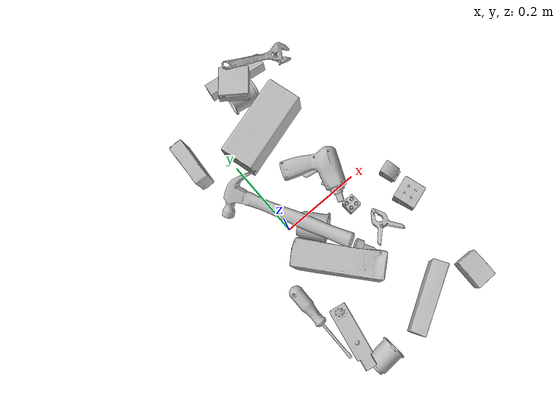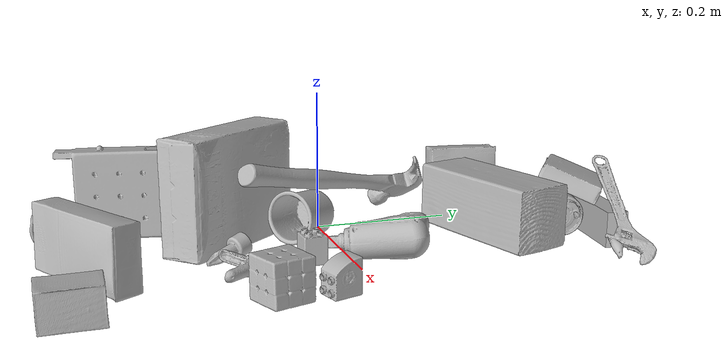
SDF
<sdf version="1.4">
  <world name="default">
    <light name="light1" type="point">
      <pose>0 0 1 0 0 0</pose>
      <diffuse>3 3 3 1</diffuse>
      <specular>3 3 3 1</specular>
    </light>
    <light name="light2" type="point">
      <pose>0 0.5 2 0 0 0</pose>
      <diffuse>1 1 1 1</diffuse>
      <specular>1 1 1 1</specular>
    </light>
    <light name="light3" type="point">
      <pose>0 0.5 2 0 0 0</pose>
      <diffuse>3 3 3 1</diffuse>
      <specular>3 3 3 1</specular>
    </light>
    <scene>
      <ambient>0.7 0.7 0.7</ambient>
    </scene>
    <model name="box21">
      <link name="link_box21">
        <collision name="default">
          <geometry>
            <mesh>
              <uri>model://cracker_box/collision_meshes/collision.obj</uri>
              <scale>1.0 1.0 1.0</scale>
            </mesh>
          </geometry>
          <surface>
            <friction>
              <ode>
                <mu>0.5</mu>
                <mu2>0.5</mu2>
              </ode>
            </friction>
          <contact>
        <ode>
            <max_vel>0</max_vel>
            <min_depth>0.0001</min_depth>
            <kp>1e8</kp>
        </ode>
    </contact></surface>
        </collision>
        <visual name="default">
          <geometry>
            <mesh>
              <uri>model://cracker_box/visual_meshes/visual.dae</uri>
              <scale>1.0 1.0 1.0</scale>
            </mesh>
          </geometry>
        </visual>
        <inertial>
          <mass>2.732837677001953</mass>
          <pose>0.000946416228543967 0.0002543424488976598 -0.0017029533628374338 -0.00031620734042352985 -0.011106490532052917 0.002546795466230165</pose>
          <inertia>
            <ixx>0.0069511193</ixx>
            <iyy>0.011477663</iyy>
            <izz>0.01637968</izz>
            <ixy>0</ixy>
            <ixz>0</ixz>
            <iyz>0</iyz>
          </inertia>
        </inertial>
      </link>
      <pose>0.037966471165418625 -0.1375323235988617 0.08175770193338394 1.5452331145805716 0.009040384812433785 2.2822874028918307</pose>
    </model>
    <model name="box22">
      <link name="link_box22">
        <collision name="default">
          <geometry>
            <mesh>
              <uri>model://jenga/collision_meshes/collision.obj</uri>
              <scale>1.0 1.0 1.0</scale>
            </mesh>
          </geometry>
          <surface>
            <friction>
              <ode>
                <mu>0.5</mu>
                <mu2>0.5</mu2>
              </ode>
            </friction>
          <contact>
        <ode>
            <max_vel>0</max_vel>
            <min_depth>0.0001</min_depth>
            <kp>1e8</kp>
        </ode>
    </contact></surface>
        </collision>
        <visual name="default">
          <geometry>
            <mesh>
              <uri>model://jenga/visual_meshes/visual.dae</uri>
              <scale>1.0 1.0 1.0</scale>
            </mesh>
          </geometry>
        </visual>
        <inertial>
          <mass>0.1563216596841812</mass>
          <pose>-2.502855807051674e-07 -0.00010250010382151231 -4.0923401684267446e-05 0.0 -7.34215461761844e-07 0.0</pose>
          <inertia>
            <ixx>4.3258e-05</ixx>
            <iyy>0.000293115</iyy>
            <izz>0.0003129252</izz>
            <ixy>0</ixy>
            <ixz>0</ixz>
            <iyz>0</iyz>
          </inertia>
        </inertial>
      </link>
      <pose>0.14350813627243042 0.37483057379722595 0.024496616795659065 -1.5775670935947816 1.1329133437351915e-05 3.0045555021682087</pose>
    </model>
    <model name="box23">
      <link name="link_box23">
        <collision name="default">
          <geometry>
            <mesh>
              <uri>model://pudding_box/collision_meshes/collision.obj</uri>
              <scale>1.0 1.0 1.0</scale>
            </mesh>
          </geometry>
          <surface>
            <friction>
              <ode>
                <mu>0.5</mu>
                <mu2>0.5</mu2>
              </ode>
            </friction>
          <contact>
        <ode>
            <max_vel>0</max_vel>
            <min_depth>0.0001</min_depth>
            <kp>1e8</kp>
        </ode>
    </contact></surface>
        </collision>
        <visual name="default">
          <geometry>
            <mesh>
              <uri>model://pudding_box/visual_meshes/visual.dae</uri>
              <scale>1.0 1.0 1.0</scale>
            </mesh>
          </geometry>
        </visual>
        <inertial>
          <mass>0.32993465662002563</mass>
          <pose>0.0004894821904599667 0.0008067885064519942 -0.0005188827635720372 0.005213102236317791 -0.0066038015122011 0.020079823288174207</pose>
          <inertia>
            <ixx>0.00037297411</ixx>
            <iyy>0.00025093966</iyy>
            <izz>0.0005507938</izz>
            <ixy>0</ixy>
            <ixz>0</ixz>
            <iyz>0</iyz>
          </inertia>
        </inertial>
      </link>
      <pose>-0.07722076773643494 0.26527342200279236 0.045177772641181946 -0.41081607343638166 1.549435652524499 -0.464888749306545</pose>
    </model>
    <model name="cup1">
      <link name="link_cup1">
        <collision name="default">
          <geometry>
            <mesh>
              <uri>model://c_cups/collision_meshes/collision.obj</uri>
              <scale>1.0 1.0 1.0</scale>
            </mesh>
          </geometry>
          <surface>
            <friction>
              <ode>
                <mu>0.5</mu>
                <mu2>0.5</mu2>
              </ode>
            </friction>
          <contact>
        <ode>
            <max_vel>0</max_vel>
            <min_depth>0.0001</min_depth>
            <kp>1e8</kp>
        </ode>
    </contact></surface>
        </collision>
        <visual name="default">
          <geometry>
            <mesh>
              <uri>model://c_cups/visual_meshes/visual.dae</uri>
              <scale>1.0 1.0 1.0</scale>
            </mesh>
          </geometry>
        </visual>
        <inertial>
          <mass>0.05159630998969078</mass>
          <pose>0.0007237254758365452 0.0020153908990323544 -0.001275097718462348 0.3021575981944983 0.01346171900925468 -0.08771841488334552</pose>
          <inertia>
            <ixx>3.8371487e-05</ixx>
            <iyy>3.7693397e-05</iyy>
            <izz>3.3934528e-05</izz>
            <ixy>0</ixy>
            <ixz>0</ixz>
            <iyz>0</iyz>
          </inertia>
        </inertial>
      </link>
      <pose>-0.02609875239431858 -0.3728184998035431 0.030231546610593796 -1.4849858534769733 0.25686420359744605 -1.4726352413620538</pose>
    </model>
    <model name="cup2">
      <link name="link_cup2">
        <collision name="default">
          <geometry>
            <mesh>
              <uri>model://d_cups/collision_meshes/collision.obj</uri>
              <scale>1.0 1.0 1.0</scale>
            </mesh>
          </geometry>
          <surface>
            <friction>
              <ode>
                <mu>0.5</mu>
                <mu2>0.5</mu2>
              </ode>
            </friction>
          <contact>
        <ode>
            <max_vel>0</max_vel>
            <min_depth>0.0001</min_depth>
            <kp>1e8</kp>
        </ode>
    </contact></surface>
        </collision>
        <visual name="default">
          <geometry>
            <mesh>
              <uri>model://d_cups/visual_meshes/visual.dae</uri>
              <scale>1.0 1.0 1.0</scale>
            </mesh>
          </geometry>
        </visual>
        <inertial>
          <mass>0.029099034145474434</mass>
          <pose>0.0008068051538430154 0.0019117402844130993 -0.0022666510194540024 0.24013101341738077 -0.2470893725106806 0.5942204262094062</pose>
          <inertia>
            <ixx>2.436274e-05</ixx>
            <iyy>2.429223e-05</iyy>
            <izz>2.2052422e-05</izz>
            <ixy>0</ixy>
            <ixz>0</ixz>
            <iyz>0</iyz>
          </inertia>
        </inertial>
      </link>
      <pose>0.12713295221328735 0.32340899109840393 0.03232743963599205 1.4527429602091295 0.7254714240875588 -1.830411435171925</pose>
    </model>
    <model name="box11">
      <link name="link_box11">
        <collision name="default">
          <geometry>
            <mesh>
              <uri>model://sugar_box/collision_meshes/collision.obj</uri>
              <scale>1.0 1.0 1.0</scale>
            </mesh>
          </geometry>
          <surface>
            <friction>
              <ode>
                <mu>0.5</mu>
                <mu2>0.5</mu2>
              </ode>
            </friction>
          <contact>
        <ode>
            <max_vel>0</max_vel>
            <min_depth>0.0001</min_depth>
            <kp>1e8</kp>
        </ode>
    </contact></surface>
        </collision>
        <visual name="default">
          <geometry>
            <mesh>
              <uri>model://sugar_box/visual_meshes/visual.dae</uri>
              <scale>1.0 1.0 1.0</scale>
            </mesh>
          </geometry>
        </visual>
        <inertial>
          <mass>0.6083751916885376</mass>
          <pose>0.0010343727190047503 3.849109634757042e-05 -0.00036364805418998003 -0.00040462662026216373 0.00105066363904409 0.002615379021562279</pose>
          <inertia>
            <ixx>0.0005068966</ixx>
            <iyy>0.0016383935</iyy>
            <izz>0.0019613528</izz>
            <ixy>0</ixy>
            <ixz>0</ixz>
            <iyz>0</iyz>
          </inertia>
        </inertial>
      </link>
      <pose>0.1388319730758667 -0.33680346608161926 0.04635179787874222 -1.5917610152949508 -0.009311787825404509 0.5286006449374056</pose>
    </model>
    <model name="box12">
      <link name="link_box12">
        <collision name="default">
          <geometry>
            <mesh>
              <uri>model://wood_block/collision_meshes/collision.obj</uri>
              <scale>1.0 1.0 1.0</scale>
            </mesh>
          </geometry>
          <surface>
            <friction>
              <ode>
                <mu>0.5</mu>
                <mu2>0.5</mu2>
              </ode>
            </friction>
          <contact>
        <ode>
            <max_vel>0</max_vel>
            <min_depth>0.0001</min_depth>
            <kp>1e8</kp>
        </ode>
    </contact></surface>
        </collision>
        <visual name="default">
          <geometry>
            <mesh>
              <uri>model://wood_block/visual_meshes/visual.dae</uri>
              <scale>1.0 1.0 1.0</scale>
            </mesh>
          </geometry>
        </visual>
        <inertial>
          <mass>1.904224157333374</mass>
          <pose>-5.813315510749817e-06 -0.000570809468626976 0.0002640858292579651 -0.05220878944738684 -0.005192694452018099 -0.006861378422653873</pose>
          <inertia>
            <ixx>0.00254814</ixx>
            <iyy>0.008049577</iyy>
            <izz>0.008019466</izz>
            <ixy>0</ixy>
            <ixz>0</ixz>
            <iyz>0</iyz>
          </inertia>
        </inertial>
      </link>
      <pose>0.10920517891645432 0.22671405971050262 0.04559175297617912 3.1414243854157635 -0.0057529996883651955 0.2787303016979921</pose>
    </model>
    <model name="box13">
      <link name="link_box13">
        <collision name="default">
          <geometry>
            <mesh>
              <uri>model://gelatin_box/collision_meshes/collision.obj</uri>
              <scale>1.0 1.0 1.0</scale>
            </mesh>
          </geometry>
          <surface>
            <friction>
              <ode>
                <mu>0.5</mu>
                <mu2>0.5</mu2>
              </ode>
            </friction>
          <contact>
        <ode>
            <max_vel>0</max_vel>
            <min_depth>0.0001</min_depth>
            <kp>1e8</kp>
        </ode>
    </contact></surface>
        </collision>
        <visual name="default">
          <geometry>
            <mesh>
              <uri>model://gelatin_box/visual_meshes/visual.dae</uri>
              <scale>1.0 1.0 1.0</scale>
            </mesh>
          </geometry>
        </visual>
        <inertial>
          <mass>0.15982484817504883</mass>
          <pose>0.0004319618456065655 0.00011156871187267825 -0.0003640321083366871 -0.001050372093012012 -0.00475581868936722 0.016440559471878533</pose>
          <inertia>
            <ixx>0.000112823305</ixx>
            <iyy>8.0589096e-05</iyy>
            <izz>0.0001717422</izz>
            <ixy>0</ixy>
            <ixz>0</ixz>
            <iyz>0</iyz>
          </inertia>
        </inertial>
      </link>
      <pose>0.12481951713562012 0.3467600643634796 0.07630278170108795 -2.7830761580556125 -0.0065357802859320555 2.503513810264839</pose>
    </model>
    <model name="box14">
      <link name="link_box14">
        <collision name="default">
          <geometry>
            <mesh>
              <uri>model://rubiks_cube/collision_meshes/collision.obj</uri>
              <scale>1.0 1.0 1.0</scale>
            </mesh>
          </geometry>
          <surface>
            <friction>
              <ode>
                <mu>0.5</mu>
                <mu2>0.5</mu2>
              </ode>
            </friction>
          <contact>
        <ode>
            <max_vel>0</max_vel>
            <min_depth>0.0001</min_depth>
            <kp>1e8</kp>
        </ode>
    </contact></surface>
        </collision>
        <visual name="default">
          <geometry>
            <mesh>
              <uri>model://rubiks_cube/visual_meshes/visual.dae</uri>
              <scale>1.0 1.0 1.0</scale>
            </mesh>
          </geometry>
        </visual>
        <inertial>
          <mass>0.19606205821037292</mass>
          <pose>2.6721043468569405e-05 5.256967051536776e-05 -7.264316536748083e-06 -0.05467227514375443 -0.09814085307594407 -0.03445353526761094</pose>
          <inertia>
            <ixx>0.00010833746</ixx>
            <iyy>0.000107832224</iyy>
            <izz>0.00010923522</izz>
            <ixy>0</ixy>
            <ixz>0</ixz>
            <iyz>0</iyz>
          </inertia>
        </inertial>
      </link>
      <pose>0.2731211483478546 -0.12428714334964752 0.029266929253935814 -1.3808566714513226 -1.538251720357353 -3.011631787164757</pose>
    </model>
    <model name="cup15">
      <link name="link_cup15">
        <collision name="default">
          <geometry>
            <mesh>
              <uri>model://e_cups/collision_meshes/collision.obj</uri>
              <scale>1.0 1.0 1.0</scale>
            </mesh>
          </geometry>
          <surface>
            <friction>
              <ode>
                <mu>0.5</mu>
                <mu2>0.5</mu2>
              </ode>
            </friction>
          <contact>
        <ode>
            <max_vel>0</max_vel>
            <min_depth>0.0001</min_depth>
            <kp>1e8</kp>
        </ode>
    </contact></surface>
        </collision>
        <visual name="default">
          <geometry>
            <mesh>
              <uri>model://e_cups/visual_meshes/visual.dae</uri>
              <scale>1.0 1.0 1.0</scale>
            </mesh>
          </geometry>
        </visual>
        <inertial>
          <mass>0.09305236488580704</mass>
          <pose>0.0011355740716680884 0.0028797851409763098 -0.003882972989231348 0.6952374393777071 0.08767548394821409 -0.5235242886817723</pose>
          <inertia>
            <ixx>8.204892e-05</ixx>
            <iyy>8.5752865e-05</iyy>
            <izz>7.844823e-05</izz>
            <ixy>0</ixy>
            <ixz>0</ixz>
            <iyz>0</iyz>
          </inertia>
        </inertial>
      </link>
      <pose>0.04732517525553703 -0.034576863050460815 0.03499014675617218 1.2522754488200394 1.290296022260948 0.3759064633109811</pose>
    </model>
    <model name="toy1">
      <link name="link_toy1">
        <collision name="default">
          <geometry>
            <mesh>
              <uri>model://foam_brick/collision_meshes/collision.obj</uri>
              <scale>1.0 1.0 1.0</scale>
            </mesh>
          </geometry>
          <surface>
            <friction>
              <ode>
                <mu>0.5</mu>
                <mu2>0.5</mu2>
              </ode>
            </friction>
          <contact>
        <ode>
            <max_vel>0</max_vel>
            <min_depth>0.0001</min_depth>
            <kp>1e8</kp>
        </ode>
    </contact></surface>
        </collision>
        <visual name="default">
          <geometry>
            <mesh>
              <uri>model://foam_brick/visual_meshes/visual.dae</uri>
              <scale>1.0 1.0 1.0</scale>
            </mesh>
          </geometry>
        </visual>
        <inertial>
          <mass>0.27397871017456055</mass>
          <pose>-0.0002522472059354186 0.0003458441060502082 -0.00025321010616607964 -0.2940210021807357 0.01727444677850634 -0.0007449878009638903</pose>
          <inertia>
            <ixx>0.00011967903</ixx>
            <iyy>0.00019107372</iyy>
            <izz>0.00019350204</izz>
            <ixy>0</ixy>
            <ixz>0</ixz>
            <iyz>0</iyz>
          </inertia>
        </inertial>
      </link>
      <pose>0.2711833715438843 -0.3611315190792084 0.02549682930111885 3.1325085306855986 0.006607252200604836 -1.578665123890373</pose>
    </model>
    <model name="toy2">
      <link name="link_toy2">
        <collision name="default">
          <geometry>
            <mesh>
              <uri>model://b_toy_airplane/collision_meshes/collision.obj</uri>
              <scale>1.0 1.0 1.0</scale>
            </mesh>
          </geometry>
          <surface>
            <friction>
              <ode>
                <mu>0.5</mu>
                <mu2>0.5</mu2>
              </ode>
            </friction>
          <contact>
        <ode>
            <max_vel>0</max_vel>
            <min_depth>0.0001</min_depth>
            <kp>1e8</kp>
        </ode>
    </contact></surface>
        </collision>
        <visual name="default">
          <geometry>
            <mesh>
              <uri>model://b_toy_airplane/visual_meshes/visual.dae</uri>
              <scale>1.0 1.0 1.0</scale>
            </mesh>
          </geometry>
        </visual>
        <inertial>
          <mass>0.24932990968227386</mass>
          <pose>0.005081362556666136 0.004015582613646984 0.00954306498169899 -0.04001809188182278 -0.04022184417958596 -0.5601502893643007</pose>
          <inertia>
            <ixx>0.0004628856</ixx>
            <iyy>0.00018501986</iyy>
            <izz>0.00057587575</izz>
            <ixy>0</ixy>
            <ixz>0</ixz>
            <iyz>0</iyz>
          </inertia>
        </inertial>
      </link>
      <pose>0.15168607234954834 0.06765028089284897 0.01697787642478943 0.18487659560457137 0.11349913133925454 -1.962544792138777</pose>
    </model>
    <model name="toy3">
      <link name="link_toy3">
        <collision name="default">
          <geometry>
            <mesh>
              <uri>model://f_lego_duplo/collision_meshes/collision.obj</uri>
              <scale>1.0 1.0 1.0</scale>
            </mesh>
          </geometry>
          <surface>
            <friction>
              <ode>
                <mu>0.5</mu>
                <mu2>0.5</mu2>
              </ode>
            </friction>
          <contact>
        <ode>
            <max_vel>0</max_vel>
            <min_depth>0.0001</min_depth>
            <kp>1e8</kp>
        </ode>
    </contact></surface>
        </collision>
        <visual name="default">
          <geometry>
            <mesh>
              <uri>model://f_lego_duplo/visual_meshes/visual.dae</uri>
              <scale>1.0 1.0 1.0</scale>
            </mesh>
          </geometry>
        </visual>
        <inertial>
          <mass>0.027739444747567177</mass>
          <pose>2.369416324654594e-05 0.00013393194240052253 0.0018837876850739121 0.02983859902212722 -0.014425048030447486 -0.6756637170693943</pose>
          <inertia>
            <ixx>5.8614983e-06</ixx>
            <iyy>5.913718e-06</iyy>
            <izz>5.0880294e-06</izz>
            <ixy>0</ixy>
            <ixz>0</ixz>
            <iyz>0</iyz>
          </inertia>
        </inertial>
      </link>
      <pose>0.15215596556663513 -0.052645493298769 0.021871009841561317 4.539995381490621e-06 1.5541812059683516e-06 -1.5172808841781367</pose>
    </model>
    <model name="toy4">
      <link name="link_toy4">
        <collision name="default">
          <geometry>
            <mesh>
              <uri>model://d_toy_airplane/collision_meshes/collision.obj</uri>
              <scale>1.0 1.0 1.0</scale>
            </mesh>
          </geometry>
          <surface>
            <friction>
              <ode>
                <mu>0.5</mu>
                <mu2>0.5</mu2>
              </ode>
            </friction>
          <contact>
        <ode>
            <max_vel>0</max_vel>
            <min_depth>0.0001</min_depth>
            <kp>1e8</kp>
        </ode>
    </contact></surface>
        </collision>
        <visual name="default">
          <geometry>
            <mesh>
              <uri>model://d_toy_airplane/visual_meshes/visual.dae</uri>
              <scale>1.0 1.0 1.0</scale>
            </mesh>
          </geometry>
        </visual>
        <inertial>
          <mass>0.018694162368774414</mass>
          <pose>9.410315396962687e-05 -5.80932610318996e-05 -0.011728095822036266 0.0002670379770250361 0.004678992469792915 0.5194762078456472</pose>
          <inertia>
            <ixx>5.6041463e-06</ixx>
            <iyy>5.6083722e-06</iyy>
            <izz>1.6919282e-06</izz>
            <ixy>0</ixy>
            <ixz>0</ixz>
            <iyz>0</iyz>
          </inertia>
        </inertial>
      </link>
      <pose>0.11254394799470901 -0.1588398814201355 0.011234487406909466 1.794438370043039 -0.1967079323068696 0.4837003433807261</pose>
    </model>
    <model name="toy5">
      <link name="link_toy5">
        <collision name="default">
          <geometry>
            <mesh>
              <uri>model://d_lego_duplo/collision_meshes/collision.obj</uri>
              <scale>1.0 1.0 1.0</scale>
            </mesh>
          </geometry>
          <surface>
            <friction>
              <ode>
                <mu>0.5</mu>
                <mu2>0.5</mu2>
              </ode>
            </friction>
          <contact>
        <ode>
            <max_vel>0</max_vel>
            <min_depth>0.0001</min_depth>
            <kp>1e8</kp>
        </ode>
    </contact></surface>
        </collision>
        <visual name="default">
          <geometry>
            <mesh>
              <uri>model://d_lego_duplo/visual_meshes/visual.dae</uri>
              <scale>1.0 1.0 1.0</scale>
            </mesh>
          </geometry>
        </visual>
        <inertial>
          <mass>0.04560890793800354</mass>
          <pose>0.0028305635787546635 0.00016366137424483895 0.0008589806966483593 0.08010848326521293 -0.38355231288211744 0.0010296590748680565</pose>
          <inertia>
            <ixx>8.829212e-06</ixx>
            <iyy>1.253105e-05</iyy>
            <izz>1.2084434e-05</izz>
            <ixy>0</ixy>
            <ixz>0</ixz>
            <iyz>0</iyz>
          </inertia>
        </inertial>
      </link>
      <pose>0.27599626779556274 -0.05451228469610214 0.02419702149927616 -0.9119369546278823 1.5707953734521753 -2.1841808293766594</pose>
    </model>
    <model name="toy6">
      <link name="link_toy6">
        <collision name="default">
          <geometry>
            <mesh>
              <uri>model://nine_hole_peg_test/collision_meshes/collision.obj</uri>
              <scale>1.0 1.0 1.0</scale>
            </mesh>
          </geometry>
          <surface>
            <friction>
              <ode>
                <mu>0.5</mu>
                <mu2>0.5</mu2>
              </ode>
            </friction>
          <contact>
        <ode>
            <max_vel>0</max_vel>
            <min_depth>0.0001</min_depth>
            <kp>1e8</kp>
        </ode>
    </contact></surface>
        </collision>
        <visual name="default">
          <geometry>
            <mesh>
              <uri>model://nine_hole_peg_test/visual_meshes/visual.dae</uri>
              <scale>1.0 1.0 1.0</scale>
            </mesh>
          </geometry>
        </visual>
        <inertial>
          <mass>0.9848376512527466</mass>
          <pose>-0.004617386031895876 -0.009647614322602749 2.646068787726108e-05 -0.0014666785927196467 0.0007194180015025765 -0.6342414580933873</pose>
          <inertia>
            <ixx>0.0015399556</ixx>
            <iyy>0.0014378404</iyy>
            <izz>0.0026984566</izz>
            <ixy>0</ixy>
            <ixz>0</ixz>
            <iyz>0</iyz>
          </inertia>
        </inertial>
      </link>
      <pose>-0.04887478053569794 -0.2864798605442047 0.06864649057388306 -1.5295629355558946 -1.5638014364942185 -1.7955601469626954</pose>
    </model>
    <model name="hardware1">
      <link name="link_hardware1">
        <collision name="default">
          <geometry>
            <mesh>
              <uri>model://hammer/collision_meshes/collision.obj</uri>
              <scale>1.0 1.0 1.0</scale>
            </mesh>
          </geometry>
          <surface>
            <friction>
              <ode>
                <mu>0.5</mu>
                <mu2>0.5</mu2>
              </ode>
            </friction>
          <contact>
        <ode>
            <max_vel>0</max_vel>
            <min_depth>0.0001</min_depth>
            <kp>1e8</kp>
        </ode>
    </contact></surface>
        </collision>
        <visual name="default">
          <geometry>
            <mesh>
              <uri>model://hammer/visual_meshes/visual.dae</uri>
              <scale>1.0 1.0 1.0</scale>
            </mesh>
          </geometry>
        </visual>
        <inertial>
          <mass>0.19812075793743134</mass>
          <pose>0.009415780194103718 -0.011892358772456646 -0.00012350631004665047 0.023155553199567438 -0.004792165144826806 -0.012760319769687977</pose>
          <inertia>
            <ixx>8.4865314e-05</ixx>
            <iyy>0.0022996028</iyy>
            <izz>0.0023654876</izz>
            <ixy>0</ixy>
            <ixz>0</ixz>
            <iyz>0</iyz>
          </inertia>
        </inertial>
      </link>
      <pose>0.020113622769713402 0.03554047644138336 0.0769207775592804 2.5893620634310213 0.20522323329821734 2.0269902776277884</pose>
    </model>
    <model name="hardware2">
      <link name="link_hardware2">
        <collision name="default">
          <geometry>
            <mesh>
              <uri>model://medium_clamp/collision_meshes/collision.obj</uri>
              <scale>1.0 1.0 1.0</scale>
            </mesh>
          </geometry>
          <surface>
            <friction>
              <ode>
                <mu>0.5</mu>
                <mu2>0.5</mu2>
              </ode>
            </friction>
          <contact>
        <ode>
            <max_vel>0</max_vel>
            <min_depth>0.0001</min_depth>
            <kp>1e8</kp>
        </ode>
    </contact></surface>
        </collision>
        <visual name="default">
          <geometry>
            <mesh>
              <uri>model://medium_clamp/visual_meshes/visual.dae</uri>
              <scale>1.0 1.0 1.0</scale>
            </mesh>
          </geometry>
        </visual>
        <inertial>
          <mass>0.022759946063160896</mass>
          <pose>0.005390991922467947 0.00039532387745566666 -0.0001222159044118598 -0.0012269199415174078 0.0025845019151957355 0.03820777718195871</pose>
          <inertia>
            <ixx>6.200628e-06</ixx>
            <iyy>9.023669e-06</iyy>
            <izz>1.3899154e-05</izz>
            <ixy>0</ixy>
            <ixz>0</ixz>
            <iyz>0</iyz>
          </inertia>
        </inertial>
      </link>
      <pose>0.17995989322662354 -0.13893401622772217 0.01353403739631176 0.07685572956847168 0.0854423659979976 1.4822754366500577</pose>
    </model>
    <model name="hardware3">
      <link name="link_hardware3">
        <collision name="default">
          <geometry>
            <mesh>
              <uri>model://flat_screwdriver/collision_meshes/collision.obj</uri>
              <scale>1.0 1.0 1.0</scale>
            </mesh>
          </geometry>
          <surface>
            <friction>
              <ode>
                <mu>0.5</mu>
                <mu2>0.5</mu2>
              </ode>
            </friction>
          <contact>
        <ode>
            <max_vel>0</max_vel>
            <min_depth>0.0001</min_depth>
            <kp>1e8</kp>
        </ode>
    </contact></surface>
        </collision>
        <visual name="default">
          <geometry>
            <mesh>
              <uri>model://flat_screwdriver/visual_meshes/visual.dae</uri>
              <scale>1.0 1.0 1.0</scale>
            </mesh>
          </geometry>
        </visual>
        <inertial>
          <mass>0.09131896495819092</mass>
          <pose>-0.0489187091588974 -0.0006576800951734185 -0.0006140916375443339 -0.5615616021105532 -0.003233725851923771 0.0069822762955213</pose>
          <inertia>
            <ixx>1.0789267e-05</ixx>
            <iyy>0.00013697217</iyy>
            <izz>0.00013690875</izz>
            <ixy>0</ixy>
            <ixz>0</ixz>
            <iyz>0</iyz>
          </inertia>
        </inertial>
      </link>
      <pose>-0.08561930060386658 -0.2168315201997757 0.014353100210428238 -2.8572442789962635 0.032965279115435356 -1.5689328132373863</pose>
    </model>
    <model name="hardware4">
      <link name="link_hardware4">
        <collision name="default">
          <geometry>
            <mesh>
              <uri>model://adjustable_wrench/collision_meshes/collision.obj</uri>
              <scale>1.0 1.0 1.0</scale>
            </mesh>
          </geometry>
          <surface>
            <friction>
              <ode>
                <mu>0.5</mu>
                <mu2>0.5</mu2>
              </ode>
            </friction>
          <contact>
        <ode>
            <max_vel>0</max_vel>
            <min_depth>0.0001</min_depth>
            <kp>1e8</kp>
        </ode>
    </contact></surface>
        </collision>
        <visual name="default">
          <geometry>
            <mesh>
              <uri>model://adjustable_wrench/visual_meshes/visual.dae</uri>
              <scale>1.0 1.0 1.0</scale>
            </mesh>
          </geometry>
        </visual>
        <inertial>
          <mass>0.023054517805576324</mass>
          <pose>0.03740980476140976 -0.0028968877159059048 -0.0011149226920679212 -0.01447335734168526 0.006656027895675122 -0.010954173130845575</pose>
          <inertia>
            <ixx>4.7184403e-06</ixx>
            <iyy>5.5223813e-05</iyy>
            <izz>5.969163e-05</izz>
            <ixy>0</ixy>
            <ixz>0</ixz>
            <iyz>0</iyz>
          </inertia>
        </inertial>
      </link>
      <pose>0.21349123120307922 0.3638186454772949 0.05253364145755768 3.1039192570556917 0.5573357895946337 -0.219630609853542</pose>
    </model>
  <physics type="ode">
      <max_contacts>50</max_contacts>
      <ode>
        <solver>
          <type>quick</type>
          <iters>75</iters>
        </solver>
        <constraints>
          <contact_max_correcting_vel>0</contact_max_correcting_vel>
          <contact_surface_layer>0</contact_surface_layer>
        </constraints>
      </ode>
    </physics></world>
</sdf>
